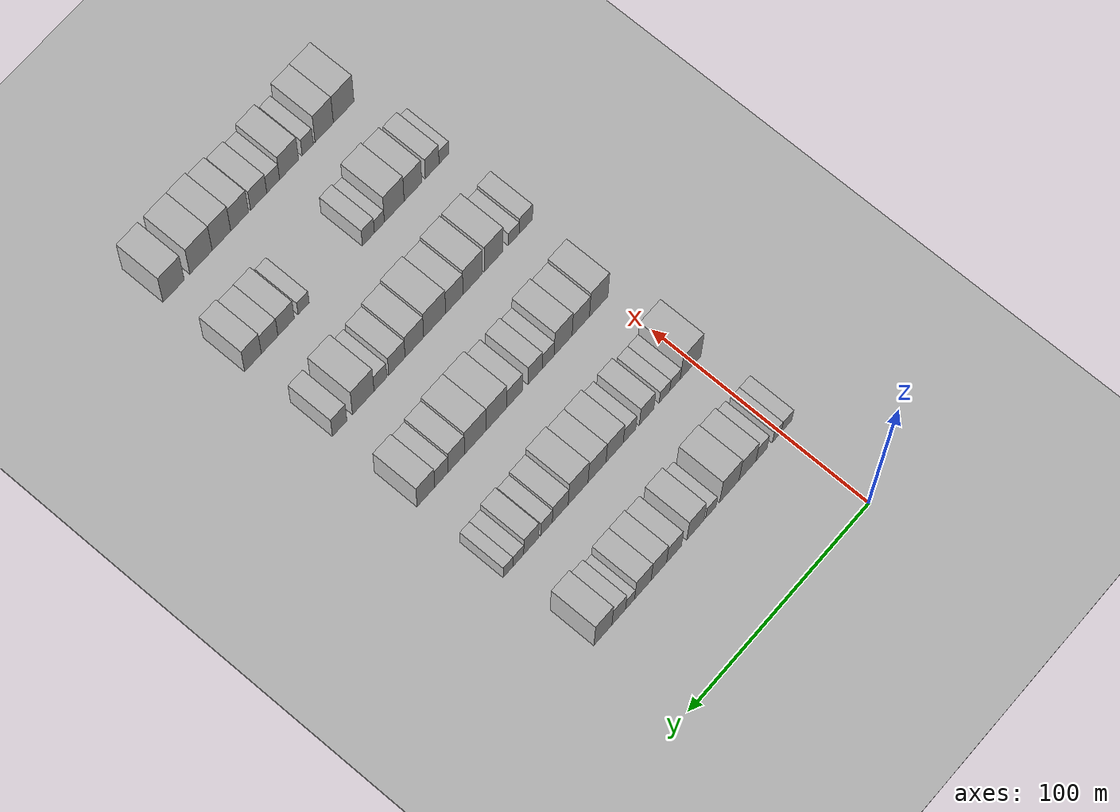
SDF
<sdf version="1.6">
 <world name="default">
  <include><name>ground_plane_1</name><uri>model://HANNAS_ground_plane</uri></include>
  <include>
   <name>ground_plane_2</name>
   <uri>model://HANNAS_ground_plane</uri>
   <pose>100 0 0  0 0 0</pose>
  </include>
  <model name="building_67">
   <static>1</static>
   <pose>50.0000 -2.9251 0 0.000000 0.000000 0.000000</pose>
   <link name="link">
    <pose>0 0 6.00 0 0 0</pose>
    <collision name="collision"><geometry><box><size>20.0000 5.9424 12.0000</size></box></geometry></collision>
    <visual name="visual">
     <cast_shadows>0</cast_shadows>
     <geometry><box><size>20.0000 5.9424 12.0000</size></box></geometry>
     <material>
      <script>
       <uri>model://HANNAS_wall/materials/scripts</uri>
       <uri>model://HANNAS_wall/materials/textures</uri>
       <name>vrc/HANNAS_wall</name>
      </script>
     </material>
    </visual>
   </link>
  </model>
  <model name="building_68">
   <static>1</static>
   <pose>50.0000 2.5611 0 0.000000 0.000000 0.000000</pose>
   <link name="link">
    <pose>0 0 6.00 0 0 0</pose>
    <collision name="collision"><geometry><box><size>20.0000 5.0298 12.0000</size></box></geometry></collision>
    <visual name="visual">
     <cast_shadows>0</cast_shadows>
     <geometry><box><size>20.0000 5.0298 12.0000</size></box></geometry>
     <material>
      <script>
       <uri>model://HANNAS_wall/materials/scripts</uri>
       <uri>model://HANNAS_wall/materials/textures</uri>
       <name>vrc/HANNAS_wall</name>
      </script>
     </material>
    </visual>
   </link>
  </model>
  <model name="building_69">
   <static>1</static>
   <pose>50.0000 11.1921 0 0.000000 0.000000 0.000000</pose>
   <link name="link">
    <pose>0 0 7.50 0 0 0</pose>
    <collision name="collision"><geometry><box><size>20.0000 6.2323 15.0000</size></box></geometry></collision>
    <visual name="visual">
     <cast_shadows>0</cast_shadows>
     <geometry><box><size>20.0000 6.2323 15.0000</size></box></geometry>
     <material>
      <script>
       <uri>model://HANNAS_wall/materials/scripts</uri>
       <uri>model://HANNAS_wall/materials/textures</uri>
       <name>vrc/HANNAS_wall</name>
      </script>
     </material>
    </visual>
   </link>
  </model>
  <model name="building_70">
   <static>1</static>
   <pose>50.0000 19.0318 0 0.000000 0.000000 0.000000</pose>
   <link name="link">
    <pose>0 0 10.50 0 0 0</pose>
    <collision name="collision"><geometry><box><size>20.0000 9.4470 21.0000</size></box></geometry></collision>
    <visual name="visual">
     <cast_shadows>0</cast_shadows>
     <geometry><box><size>20.0000 9.4470 21.0000</size></box></geometry>
     <material>
      <script>
       <uri>model://HANNAS_wall/materials/scripts</uri>
       <uri>model://HANNAS_wall/materials/textures</uri>
       <name>vrc/HANNAS_wall</name>
      </script>
     </material>
    </visual>
   </link>
  </model>
  <model name="building_71">
   <static>1</static>
   <pose>50.0000 29.1392 0 0.000000 0.000000 0.000000</pose>
   <link name="link">
    <pose>0 0 12.00 0 0 0</pose>
    <collision name="collision"><geometry><box><size>20.0000 10.7678 24.0000</size></box></geometry></collision>
    <visual name="visual">
     <cast_shadows>0</cast_shadows>
     <geometry><box><size>20.0000 10.7678 24.0000</size></box></geometry>
     <material>
      <script>
       <uri>model://HANNAS_wall/materials/scripts</uri>
       <uri>model://HANNAS_wall/materials/textures</uri>
       <name>vrc/HANNAS_wall</name>
      </script>
     </material>
    </visual>
   </link>
  </model>
  <model name="building_72">
   <static>1</static>
   <pose>50.0000 39.4350 0 0.000000 0.000000 0.000000</pose>
   <link name="link">
    <pose>0 0 6.00 0 0 0</pose>
    <collision name="collision"><geometry><box><size>20.0000 5.8238 12.0000</size></box></geometry></collision>
    <visual name="visual">
     <cast_shadows>0</cast_shadows>
     <geometry><box><size>20.0000 5.8238 12.0000</size></box></geometry>
     <material>
      <script>
       <uri>model://HANNAS_wall/materials/scripts</uri>
       <uri>model://HANNAS_wall/materials/textures</uri>
       <name>vrc/HANNAS_wall</name>
      </script>
     </material>
    </visual>
   </link>
  </model>
  <model name="building_73">
   <static>1</static>
   <pose>50.0000 48.0004 0 0.000000 0.000000 0.000000</pose>
   <link name="link">
    <pose>0 0 10.50 0 0 0</pose>
    <collision name="collision"><geometry><box><size>20.0000 9.3071 21.0000</size></box></geometry></collision>
    <visual name="visual">
     <cast_shadows>0</cast_shadows>
     <geometry><box><size>20.0000 9.3071 21.0000</size></box></geometry>
     <material>
      <script>
       <uri>model://HANNAS_wall/materials/scripts</uri>
       <uri>model://HANNAS_wall/materials/textures</uri>
       <name>vrc/HANNAS_wall</name>
      </script>
     </material>
    </visual>
   </link>
  </model>
  <model name="building_74">
   <static>1</static>
   <pose>50.0000 59.7397 0 0.000000 0.000000 0.000000</pose>
   <link name="link">
    <pose>0 0 9.00 0 0 0</pose>
    <collision name="collision"><geometry><box><size>20.0000 8.1716 18.0000</size></box></geometry></collision>
    <visual name="visual">
     <cast_shadows>0</cast_shadows>
     <geometry><box><size>20.0000 8.1716 18.0000</size></box></geometry>
     <material>
      <script>
       <uri>model://HANNAS_wall/materials/scripts</uri>
       <uri>model://HANNAS_wall/materials/textures</uri>
       <name>vrc/HANNAS_wall</name>
      </script>
     </material>
    </visual>
   </link>
  </model>
  <model name="building_75">
   <static>1</static>
   <pose>50.0000 68.0638 0 0.000000 0.000000 0.000000</pose>
   <link name="link">
    <pose>0 0 10.50 0 0 0</pose>
    <collision name="collision"><geometry><box><size>20.0000 8.4766 21.0000</size></box></geometry></collision>
    <visual name="visual">
     <cast_shadows>0</cast_shadows>
     <geometry><box><size>20.0000 8.4766 21.0000</size></box></geometry>
     <material>
      <script>
       <uri>model://HANNAS_wall/materials/scripts</uri>
       <uri>model://HANNAS_wall/materials/textures</uri>
       <name>vrc/HANNAS_wall</name>
      </script>
     </material>
    </visual>
   </link>
  </model>
  <model name="building_76">
   <static>1</static>
   <pose>50.0000 76.7756 0 0.000000 0.000000 0.000000</pose>
   <link name="link">
    <pose>0 0 10.50 0 0 0</pose>
    <collision name="collision"><geometry><box><size>20.0000 8.9470 21.0000</size></box></geometry></collision>
    <visual name="visual">
     <cast_shadows>0</cast_shadows>
     <geometry><box><size>20.0000 8.9470 21.0000</size></box></geometry>
     <material>
      <script>
       <uri>model://HANNAS_wall/materials/scripts</uri>
       <uri>model://HANNAS_wall/materials/textures</uri>
       <name>vrc/HANNAS_wall</name>
      </script>
     </material>
    </visual>
   </link>
  </model>
  <model name="building_77">
   <static>1</static>
   <pose>50.0000 83.7111 0 0.000000 0.000000 0.000000</pose>
   <link name="link">
    <pose>0 0 6.00 0 0 0</pose>
    <collision name="collision"><geometry><box><size>20.0000 4.9240 12.0000</size></box></geometry></collision>
    <visual name="visual">
     <cast_shadows>0</cast_shadows>
     <geometry><box><size>20.0000 4.9240 12.0000</size></box></geometry>
     <material>
      <script>
       <uri>model://HANNAS_wall/materials/scripts</uri>
       <uri>model://HANNAS_wall/materials/textures</uri>
       <name>vrc/HANNAS_wall</name>
      </script>
     </material>
    </visual>
   </link>
  </model>
  <model name="building_78">
   <static>1</static>
   <pose>50.0000 89.8989 0 0.000000 0.000000 0.000000</pose>
   <link name="link">
    <pose>0 0 9.00 0 0 0</pose>
    <collision name="collision"><geometry><box><size>20.0000 7.4517 18.0000</size></box></geometry></collision>
    <visual name="visual">
     <cast_shadows>0</cast_shadows>
     <geometry><box><size>20.0000 7.4517 18.0000</size></box></geometry>
     <material>
      <script>
       <uri>model://HANNAS_wall/materials/scripts</uri>
       <uri>model://HANNAS_wall/materials/textures</uri>
       <name>vrc/HANNAS_wall</name>
      </script>
     </material>
    </visual>
   </link>
  </model>
  <model name="building_79">
   <static>1</static>
   <pose>50.0000 98.4519 0 0.000000 0.000000 0.000000</pose>
   <link name="link">
    <pose>0 0 12.00 0 0 0</pose>
    <collision name="collision"><geometry><box><size>20.0000 9.6544 24.0000</size></box></geometry></collision>
    <visual name="visual">
     <cast_shadows>0</cast_shadows>
     <geometry><box><size>20.0000 9.6544 24.0000</size></box></geometry>
     <material>
      <script>
       <uri>model://HANNAS_wall/materials/scripts</uri>
       <uri>model://HANNAS_wall/materials/textures</uri>
       <name>vrc/HANNAS_wall</name>
      </script>
     </material>
    </visual>
   </link>
  </model>
  <model name="building_208">
   <static>1</static>
   <pose>90.0000 2.2526 0 0.000000 0.000000 0.000000</pose>
   <link name="link">
    <pose>0 0 12.00 0 0 0</pose>
    <collision name="collision"><geometry><box><size>20.0000 11.5766 24.0000</size></box></geometry></collision>
    <visual name="visual">
     <cast_shadows>0</cast_shadows>
     <geometry><box><size>20.0000 11.5766 24.0000</size></box></geometry>
     <material>
      <script>
       <uri>model://HANNAS_wall/materials/scripts</uri>
       <uri>model://HANNAS_wall/materials/textures</uri>
       <name>vrc/HANNAS_wall</name>
      </script>
     </material>
    </visual>
   </link>
  </model>
  <model name="building_209">
   <static>1</static>
   <pose>90.0000 10.9631 0 0.000000 0.000000 0.000000</pose>
   <link name="link">
    <pose>0 0 6.00 0 0 0</pose>
    <collision name="collision"><geometry><box><size>20.0000 5.8444 12.0000</size></box></geometry></collision>
    <visual name="visual">
     <cast_shadows>0</cast_shadows>
     <geometry><box><size>20.0000 5.8444 12.0000</size></box></geometry>
     <material>
      <script>
       <uri>model://HANNAS_wall/materials/scripts</uri>
       <uri>model://HANNAS_wall/materials/textures</uri>
       <name>vrc/HANNAS_wall</name>
      </script>
     </material>
    </visual>
   </link>
  </model>
  <model name="building_210">
   <static>1</static>
   <pose>90.0000 16.8318 0 0.000000 0.000000 0.000000</pose>
   <link name="link">
    <pose>0 0 6.00 0 0 0</pose>
    <collision name="collision"><geometry><box><size>20.0000 5.8929 12.0000</size></box></geometry></collision>
    <visual name="visual">
     <cast_shadows>0</cast_shadows>
     <geometry><box><size>20.0000 5.8929 12.0000</size></box></geometry>
     <material>
      <script>
       <uri>model://HANNAS_wall/materials/scripts</uri>
       <uri>model://HANNAS_wall/materials/textures</uri>
       <name>vrc/HANNAS_wall</name>
      </script>
     </material>
    </visual>
   </link>
  </model>
  <model name="building_211">
   <static>1</static>
   <pose>90.0000 26.8018 0 0.000000 0.000000 0.000000</pose>
   <link name="link">
    <pose>0 0 9.00 0 0 0</pose>
    <collision name="collision"><geometry><box><size>20.0000 8.0470 18.0000</size></box></geometry></collision>
    <visual name="visual">
     <cast_shadows>0</cast_shadows>
     <geometry><box><size>20.0000 8.0470 18.0000</size></box></geometry>
     <material>
      <script>
       <uri>model://HANNAS_wall/materials/scripts</uri>
       <uri>model://HANNAS_wall/materials/textures</uri>
       <name>vrc/HANNAS_wall</name>
      </script>
     </material>
    </visual>
   </link>
  </model>
  <model name="building_212">
   <static>1</static>
   <pose>90.0000 36.2818 0 0.000000 0.000000 0.000000</pose>
   <link name="link">
    <pose>0 0 7.50 0 0 0</pose>
    <collision name="collision"><geometry><box><size>20.0000 6.9131 15.0000</size></box></geometry></collision>
    <visual name="visual">
     <cast_shadows>0</cast_shadows>
     <geometry><box><size>20.0000 6.9131 15.0000</size></box></geometry>
     <material>
      <script>
       <uri>model://HANNAS_wall/materials/scripts</uri>
       <uri>model://HANNAS_wall/materials/textures</uri>
       <name>vrc/HANNAS_wall</name>
      </script>
     </material>
    </visual>
   </link>
  </model>
  <model name="building_213">
   <static>1</static>
   <pose>90.0000 44.4817 0 0.000000 0.000000 0.000000</pose>
   <link name="link">
    <pose>0 0 10.50 0 0 0</pose>
    <collision name="collision"><geometry><box><size>20.0000 9.4865 21.0000</size></box></geometry></collision>
    <visual name="visual">
     <cast_shadows>0</cast_shadows>
     <geometry><box><size>20.0000 9.4865 21.0000</size></box></geometry>
     <material>
      <script>
       <uri>model://HANNAS_wall/materials/scripts</uri>
       <uri>model://HANNAS_wall/materials/textures</uri>
       <name>vrc/HANNAS_wall</name>
      </script>
     </material>
    </visual>
   </link>
  </model>
  <model name="building_214">
   <static>1</static>
   <pose>90.0000 54.1620 0 0.000000 0.000000 0.000000</pose>
   <link name="link">
    <pose>0 0 10.50 0 0 0</pose>
    <collision name="collision"><geometry><box><size>20.0000 9.8741 21.0000</size></box></geometry></collision>
    <visual name="visual">
     <cast_shadows>0</cast_shadows>
     <geometry><box><size>20.0000 9.8741 21.0000</size></box></geometry>
     <material>
      <script>
       <uri>model://HANNAS_wall/materials/scripts</uri>
       <uri>model://HANNAS_wall/materials/textures</uri>
       <name>vrc/HANNAS_wall</name>
      </script>
     </material>
    </visual>
   </link>
  </model>
  <model name="building_215">
   <static>1</static>
   <pose>90.0000 64.5155 0 0.000000 0.000000 0.000000</pose>
   <link name="link">
    <pose>0 0 12.00 0 0 0</pose>
    <collision name="collision"><geometry><box><size>20.0000 10.8328 24.0000</size></box></geometry></collision>
    <visual name="visual">
     <cast_shadows>0</cast_shadows>
     <geometry><box><size>20.0000 10.8328 24.0000</size></box></geometry>
     <material>
      <script>
       <uri>model://HANNAS_wall/materials/scripts</uri>
       <uri>model://HANNAS_wall/materials/textures</uri>
       <name>vrc/HANNAS_wall</name>
      </script>
     </material>
    </visual>
   </link>
  </model>
  <model name="building_216">
   <static>1</static>
   <pose>90.0000 74.2738 0 0.000000 0.000000 0.000000</pose>
   <link name="link">
    <pose>0 0 9.00 0 0 0</pose>
    <collision name="collision"><geometry><box><size>20.0000 8.6839 18.0000</size></box></geometry></collision>
    <visual name="visual">
     <cast_shadows>0</cast_shadows>
     <geometry><box><size>20.0000 8.6839 18.0000</size></box></geometry>
     <material>
      <script>
       <uri>model://HANNAS_wall/materials/scripts</uri>
       <uri>model://HANNAS_wall/materials/textures</uri>
       <name>vrc/HANNAS_wall</name>
      </script>
     </material>
    </visual>
   </link>
  </model>
  <model name="building_217">
   <static>1</static>
   <pose>90.0000 81.8164 0 0.000000 0.000000 0.000000</pose>
   <link name="link">
    <pose>0 0 7.50 0 0 0</pose>
    <collision name="collision"><geometry><box><size>20.0000 6.4012 15.0000</size></box></geometry></collision>
    <visual name="visual">
     <cast_shadows>0</cast_shadows>
     <geometry><box><size>20.0000 6.4012 15.0000</size></box></geometry>
     <material>
      <script>
       <uri>model://HANNAS_wall/materials/scripts</uri>
       <uri>model://HANNAS_wall/materials/textures</uri>
       <name>vrc/HANNAS_wall</name>
      </script>
     </material>
    </visual>
   </link>
  </model>
  <model name="building_218">
   <static>1</static>
   <pose>90.0000 90.0729 0 0.000000 0.000000 0.000000</pose>
   <link name="link">
    <pose>0 0 9.00 0 0 0</pose>
    <collision name="collision"><geometry><box><size>20.0000 8.1118 18.0000</size></box></geometry></collision>
    <visual name="visual">
     <cast_shadows>0</cast_shadows>
     <geometry><box><size>20.0000 8.1118 18.0000</size></box></geometry>
     <material>
      <script>
       <uri>model://HANNAS_wall/materials/scripts</uri>
       <uri>model://HANNAS_wall/materials/textures</uri>
       <name>vrc/HANNAS_wall</name>
      </script>
     </material>
    </visual>
   </link>
  </model>
  <model name="building_219">
   <static>1</static>
   <pose>90.0000 97.0209 0 0.000000 0.000000 0.000000</pose>
   <link name="link">
    <pose>0 0 6.00 0 0 0</pose>
    <collision name="collision"><geometry><box><size>20.0000 5.7843 12.0000</size></box></geometry></collision>
    <visual name="visual">
     <cast_shadows>0</cast_shadows>
     <geometry><box><size>20.0000 5.7843 12.0000</size></box></geometry>
     <material>
      <script>
       <uri>model://HANNAS_wall/materials/scripts</uri>
       <uri>model://HANNAS_wall/materials/textures</uri>
       <name>vrc/HANNAS_wall</name>
      </script>
     </material>
    </visual>
   </link>
  </model>
  <model name="building_220">
   <static>1</static>
   <pose>90.0000 102.5352 0 0.000000 0.000000 0.000000</pose>
   <link name="link">
    <pose>0 0 6.00 0 0 0</pose>
    <collision name="collision"><geometry><box><size>20.0000 5.2442 12.0000</size></box></geometry></collision>
    <visual name="visual">
     <cast_shadows>0</cast_shadows>
     <geometry><box><size>20.0000 5.2442 12.0000</size></box></geometry>
     <material>
      <script>
       <uri>model://HANNAS_wall/materials/scripts</uri>
       <uri>model://HANNAS_wall/materials/textures</uri>
       <name>vrc/HANNAS_wall</name>
      </script>
     </material>
    </visual>
   </link>
  </model>
  <model name="building_346">
   <static>1</static>
   <pose>130.0000 5.7412 0 0.000000 0.000000 0.000000</pose>
   <link name="link">
    <pose>0 0 12.00 0 0 0</pose>
    <collision name="collision"><geometry><box><size>20.0000 10.3087 24.0000</size></box></geometry></collision>
    <visual name="visual">
     <cast_shadows>0</cast_shadows>
     <geometry><box><size>20.0000 10.3087 24.0000</size></box></geometry>
     <material>
      <script>
       <uri>model://HANNAS_wall/materials/scripts</uri>
       <uri>model://HANNAS_wall/materials/textures</uri>
       <name>vrc/HANNAS_wall</name>
      </script>
     </material>
    </visual>
   </link>
  </model>
  <model name="building_347">
   <static>1</static>
   <pose>130.0000 15.7295 0 0.000000 0.000000 0.000000</pose>
   <link name="link">
    <pose>0 0 10.50 0 0 0</pose>
    <collision name="collision"><geometry><box><size>20.0000 9.6678 21.0000</size></box></geometry></collision>
    <visual name="visual">
     <cast_shadows>0</cast_shadows>
     <geometry><box><size>20.0000 9.6678 21.0000</size></box></geometry>
     <material>
      <script>
       <uri>model://HANNAS_wall/materials/scripts</uri>
       <uri>model://HANNAS_wall/materials/textures</uri>
       <name>vrc/HANNAS_wall</name>
      </script>
     </material>
    </visual>
   </link>
  </model>
  <model name="building_348">
   <static>1</static>
   <pose>130.0000 25.5484 0 0.000000 0.000000 0.000000</pose>
   <link name="link">
    <pose>0 0 12.00 0 0 0</pose>
    <collision name="collision"><geometry><box><size>20.0000 9.9700 24.0000</size></box></geometry></collision>
    <visual name="visual">
     <cast_shadows>0</cast_shadows>
     <geometry><box><size>20.0000 9.9700 24.0000</size></box></geometry>
     <material>
      <script>
       <uri>model://HANNAS_wall/materials/scripts</uri>
       <uri>model://HANNAS_wall/materials/textures</uri>
       <name>vrc/HANNAS_wall</name>
      </script>
     </material>
    </visual>
   </link>
  </model>
  <model name="building_349">
   <static>1</static>
   <pose>130.0000 33.8254 0 0.000000 0.000000 0.000000</pose>
   <link name="link">
    <pose>0 0 7.50 0 0 0</pose>
    <collision name="collision"><geometry><box><size>20.0000 6.5841 15.0000</size></box></geometry></collision>
    <visual name="visual">
     <cast_shadows>0</cast_shadows>
     <geometry><box><size>20.0000 6.5841 15.0000</size></box></geometry>
     <material>
      <script>
       <uri>model://HANNAS_wall/materials/scripts</uri>
       <uri>model://HANNAS_wall/materials/textures</uri>
       <name>vrc/HANNAS_wall</name>
      </script>
     </material>
    </visual>
   </link>
  </model>
  <model name="building_350">
   <static>1</static>
   <pose>130.0000 40.9963 0 0.000000 0.000000 0.000000</pose>
   <link name="link">
    <pose>0 0 9.00 0 0 0</pose>
    <collision name="collision"><geometry><box><size>20.0000 7.7577 18.0000</size></box></geometry></collision>
    <visual name="visual">
     <cast_shadows>0</cast_shadows>
     <geometry><box><size>20.0000 7.7577 18.0000</size></box></geometry>
     <material>
      <script>
       <uri>model://HANNAS_wall/materials/scripts</uri>
       <uri>model://HANNAS_wall/materials/textures</uri>
       <name>vrc/HANNAS_wall</name>
      </script>
     </material>
    </visual>
   </link>
  </model>
  <model name="building_351">
   <static>1</static>
   <pose>130.0000 52.2094 0 0.000000 0.000000 0.000000</pose>
   <link name="link">
    <pose>0 0 9.00 0 0 0</pose>
    <collision name="collision"><geometry><box><size>20.0000 8.6685 18.0000</size></box></geometry></collision>
    <visual name="visual">
     <cast_shadows>0</cast_shadows>
     <geometry><box><size>20.0000 8.6685 18.0000</size></box></geometry>
     <material>
      <script>
       <uri>model://HANNAS_wall/materials/scripts</uri>
       <uri>model://HANNAS_wall/materials/textures</uri>
       <name>vrc/HANNAS_wall</name>
      </script>
     </material>
    </visual>
   </link>
  </model>
  <model name="building_352">
   <static>1</static>
   <pose>130.0000 62.1734 0 0.000000 0.000000 0.000000</pose>
   <link name="link">
    <pose>0 0 12.00 0 0 0</pose>
    <collision name="collision"><geometry><box><size>20.0000 11.2594 24.0000</size></box></geometry></collision>
    <visual name="visual">
     <cast_shadows>0</cast_shadows>
     <geometry><box><size>20.0000 11.2594 24.0000</size></box></geometry>
     <material>
      <script>
       <uri>model://HANNAS_wall/materials/scripts</uri>
       <uri>model://HANNAS_wall/materials/textures</uri>
       <name>vrc/HANNAS_wall</name>
      </script>
     </material>
    </visual>
   </link>
  </model>
  <model name="building_353">
   <static>1</static>
   <pose>130.0000 73.6812 0 0.000000 0.000000 0.000000</pose>
   <link name="link">
    <pose>0 0 12.00 0 0 0</pose>
    <collision name="collision"><geometry><box><size>20.0000 11.7561 24.0000</size></box></geometry></collision>
    <visual name="visual">
     <cast_shadows>0</cast_shadows>
     <geometry><box><size>20.0000 11.7561 24.0000</size></box></geometry>
     <material>
      <script>
       <uri>model://HANNAS_wall/materials/scripts</uri>
       <uri>model://HANNAS_wall/materials/textures</uri>
       <name>vrc/HANNAS_wall</name>
      </script>
     </material>
    </visual>
   </link>
  </model>
  <model name="building_354">
   <static>1</static>
   <pose>130.0000 84.0044 0 0.000000 0.000000 0.000000</pose>
   <link name="link">
    <pose>0 0 10.50 0 0 0</pose>
    <collision name="collision"><geometry><box><size>20.0000 8.8904 21.0000</size></box></geometry></collision>
    <visual name="visual">
     <cast_shadows>0</cast_shadows>
     <geometry><box><size>20.0000 8.8904 21.0000</size></box></geometry>
     <material>
      <script>
       <uri>model://HANNAS_wall/materials/scripts</uri>
       <uri>model://HANNAS_wall/materials/textures</uri>
       <name>vrc/HANNAS_wall</name>
      </script>
     </material>
    </visual>
   </link>
  </model>
  <model name="building_355">
   <static>1</static>
   <pose>130.0000 92.0785 0 0.000000 0.000000 0.000000</pose>
   <link name="link">
    <pose>0 0 9.00 0 0 0</pose>
    <collision name="collision"><geometry><box><size>20.0000 7.2577 18.0000</size></box></geometry></collision>
    <visual name="visual">
     <cast_shadows>0</cast_shadows>
     <geometry><box><size>20.0000 7.2577 18.0000</size></box></geometry>
     <material>
      <script>
       <uri>model://HANNAS_wall/materials/scripts</uri>
       <uri>model://HANNAS_wall/materials/textures</uri>
       <name>vrc/HANNAS_wall</name>
      </script>
     </material>
    </visual>
   </link>
  </model>
  <model name="building_356">
   <static>1</static>
   <pose>130.0000 100.4611 0 0.000000 0.000000 0.000000</pose>
   <link name="link">
    <pose>0 0 10.50 0 0 0</pose>
    <collision name="collision"><geometry><box><size>20.0000 9.5075 21.0000</size></box></geometry></collision>
    <visual name="visual">
     <cast_shadows>0</cast_shadows>
     <geometry><box><size>20.0000 9.5075 21.0000</size></box></geometry>
     <material>
      <script>
       <uri>model://HANNAS_wall/materials/scripts</uri>
       <uri>model://HANNAS_wall/materials/textures</uri>
       <name>vrc/HANNAS_wall</name>
      </script>
     </material>
    </visual>
   </link>
  </model>
  <model name="building_485">
   <static>1</static>
   <pose>170.0000 -0.7146 0 0.000000 0.000000 0.000000</pose>
   <link name="link">
    <pose>0 0 7.50 0 0 0</pose>
    <collision name="collision"><geometry><box><size>20.0000 7.4684 15.0000</size></box></geometry></collision>
    <visual name="visual">
     <cast_shadows>0</cast_shadows>
     <geometry><box><size>20.0000 7.4684 15.0000</size></box></geometry>
     <material>
      <script>
       <uri>model://HANNAS_wall/materials/scripts</uri>
       <uri>model://HANNAS_wall/materials/textures</uri>
       <name>vrc/HANNAS_wall</name>
      </script>
     </material>
    </visual>
   </link>
  </model>
  <model name="building_486">
   <static>1</static>
   <pose>170.0000 5.9937 0 0.000000 0.000000 0.000000</pose>
   <link name="link">
    <pose>0 0 6.00 0 0 0</pose>
    <collision name="collision"><geometry><box><size>20.0000 5.9483 12.0000</size></box></geometry></collision>
    <visual name="visual">
     <cast_shadows>0</cast_shadows>
     <geometry><box><size>20.0000 5.9483 12.0000</size></box></geometry>
     <material>
      <script>
       <uri>model://HANNAS_wall/materials/scripts</uri>
       <uri>model://HANNAS_wall/materials/textures</uri>
       <name>vrc/HANNAS_wall</name>
      </script>
     </material>
    </visual>
   </link>
  </model>
  <model name="building_487">
   <static>1</static>
   <pose>170.0000 17.1739 0 0.000000 0.000000 0.000000</pose>
   <link name="link">
    <pose>0 0 12.00 0 0 0</pose>
    <collision name="collision"><geometry><box><size>20.0000 10.4120 24.0000</size></box></geometry></collision>
    <visual name="visual">
     <cast_shadows>0</cast_shadows>
     <geometry><box><size>20.0000 10.4120 24.0000</size></box></geometry>
     <material>
      <script>
       <uri>model://HANNAS_wall/materials/scripts</uri>
       <uri>model://HANNAS_wall/materials/textures</uri>
       <name>vrc/HANNAS_wall</name>
      </script>
     </material>
    </visual>
   </link>
  </model>
  <model name="building_488">
   <static>1</static>
   <pose>170.0000 28.7469 0 0.000000 0.000000 0.000000</pose>
   <link name="link">
    <pose>0 0 12.00 0 0 0</pose>
    <collision name="collision"><geometry><box><size>20.0000 10.7340 24.0000</size></box></geometry></collision>
    <visual name="visual">
     <cast_shadows>0</cast_shadows>
     <geometry><box><size>20.0000 10.7340 24.0000</size></box></geometry>
     <material>
      <script>
       <uri>model://HANNAS_wall/materials/scripts</uri>
       <uri>model://HANNAS_wall/materials/textures</uri>
       <name>vrc/HANNAS_wall</name>
      </script>
     </material>
    </visual>
   </link>
  </model>
  <model name="building_489">
   <static>1</static>
   <pose>170.0000 38.8839 0 0.000000 0.000000 0.000000</pose>
   <link name="link">
    <pose>0 0 10.50 0 0 0</pose>
    <collision name="collision"><geometry><box><size>20.0000 9.5401 21.0000</size></box></geometry></collision>
    <visual name="visual">
     <cast_shadows>0</cast_shadows>
     <geometry><box><size>20.0000 9.5401 21.0000</size></box></geometry>
     <material>
      <script>
       <uri>model://HANNAS_wall/materials/scripts</uri>
       <uri>model://HANNAS_wall/materials/textures</uri>
       <name>vrc/HANNAS_wall</name>
      </script>
     </material>
    </visual>
   </link>
  </model>
  <model name="building_490">
   <static>1</static>
   <pose>170.0000 49.6444 0 0.000000 0.000000 0.000000</pose>
   <link name="link">
    <pose>0 0 12.00 0 0 0</pose>
    <collision name="collision"><geometry><box><size>20.0000 11.9809 24.0000</size></box></geometry></collision>
    <visual name="visual">
     <cast_shadows>0</cast_shadows>
     <geometry><box><size>20.0000 11.9809 24.0000</size></box></geometry>
     <material>
      <script>
       <uri>model://HANNAS_wall/materials/scripts</uri>
       <uri>model://HANNAS_wall/materials/textures</uri>
       <name>vrc/HANNAS_wall</name>
      </script>
     </material>
    </visual>
   </link>
  </model>
  <model name="building_491">
   <static>1</static>
   <pose>170.0000 60.7049 0 0.000000 0.000000 0.000000</pose>
   <link name="link">
    <pose>0 0 10.50 0 0 0</pose>
    <collision name="collision"><geometry><box><size>20.0000 10.1401 21.0000</size></box></geometry></collision>
    <visual name="visual">
     <cast_shadows>0</cast_shadows>
     <geometry><box><size>20.0000 10.1401 21.0000</size></box></geometry>
     <material>
      <script>
       <uri>model://HANNAS_wall/materials/scripts</uri>
       <uri>model://HANNAS_wall/materials/textures</uri>
       <name>vrc/HANNAS_wall</name>
      </script>
     </material>
    </visual>
   </link>
  </model>
  <model name="building_492">
   <static>1</static>
   <pose>170.0000 70.2241 0 0.000000 0.000000 0.000000</pose>
   <link name="link">
    <pose>0 0 9.00 0 0 0</pose>
    <collision name="collision"><geometry><box><size>20.0000 8.8984 18.0000</size></box></geometry></collision>
    <visual name="visual">
     <cast_shadows>0</cast_shadows>
     <geometry><box><size>20.0000 8.8984 18.0000</size></box></geometry>
     <material>
      <script>
       <uri>model://HANNAS_wall/materials/scripts</uri>
       <uri>model://HANNAS_wall/materials/textures</uri>
       <name>vrc/HANNAS_wall</name>
      </script>
     </material>
    </visual>
   </link>
  </model>
  <model name="building_493">
   <static>1</static>
   <pose>170.0000 79.1418 0 0.000000 0.000000 0.000000</pose>
   <link name="link">
    <pose>0 0 7.50 0 0 0</pose>
    <collision name="collision"><geometry><box><size>20.0000 6.9371 15.0000</size></box></geometry></collision>
    <visual name="visual">
     <cast_shadows>0</cast_shadows>
     <geometry><box><size>20.0000 6.9371 15.0000</size></box></geometry>
     <material>
      <script>
       <uri>model://HANNAS_wall/materials/scripts</uri>
       <uri>model://HANNAS_wall/materials/textures</uri>
       <name>vrc/HANNAS_wall</name>
      </script>
     </material>
    </visual>
   </link>
  </model>
  <model name="building_494">
   <static>1</static>
   <pose>170.0000 88.4236 0 0.000000 0.000000 0.000000</pose>
   <link name="link">
    <pose>0 0 12.00 0 0 0</pose>
    <collision name="collision"><geometry><box><size>20.0000 11.6265 24.0000</size></box></geometry></collision>
    <visual name="visual">
     <cast_shadows>0</cast_shadows>
     <geometry><box><size>20.0000 11.6265 24.0000</size></box></geometry>
     <material>
      <script>
       <uri>model://HANNAS_wall/materials/scripts</uri>
       <uri>model://HANNAS_wall/materials/textures</uri>
       <name>vrc/HANNAS_wall</name>
      </script>
     </material>
    </visual>
   </link>
  </model>
  <model name="building_495">
   <static>1</static>
   <pose>170.0000 101.1318 0 0.000000 0.000000 0.000000</pose>
   <link name="link">
    <pose>0 0 9.00 0 0 0</pose>
    <collision name="collision"><geometry><box><size>20.0000 7.7897 18.0000</size></box></geometry></collision>
    <visual name="visual">
     <cast_shadows>0</cast_shadows>
     <geometry><box><size>20.0000 7.7897 18.0000</size></box></geometry>
     <material>
      <script>
       <uri>model://HANNAS_wall/materials/scripts</uri>
       <uri>model://HANNAS_wall/materials/textures</uri>
       <name>vrc/HANNAS_wall</name>
      </script>
     </material>
    </visual>
   </link>
  </model>
  <model name="building_612">
   <static>1</static>
   <pose>210.0000 -1.5900 0 0.000000 0.000000 0.000000</pose>
   <link name="link">
    <pose>0 0 6.00 0 0 0</pose>
    <collision name="collision"><geometry><box><size>20.0000 5.4959 12.0000</size></box></geometry></collision>
    <visual name="visual">
     <cast_shadows>0</cast_shadows>
     <geometry><box><size>20.0000 5.4959 12.0000</size></box></geometry>
     <material>
      <script>
       <uri>model://HANNAS_wall/materials/scripts</uri>
       <uri>model://HANNAS_wall/materials/textures</uri>
       <name>vrc/HANNAS_wall</name>
      </script>
     </material>
    </visual>
   </link>
  </model>
  <model name="building_613">
   <static>1</static>
   <pose>210.0000 4.9634 0 0.000000 0.000000 0.000000</pose>
   <link name="link">
    <pose>0 0 9.00 0 0 0</pose>
    <collision name="collision"><geometry><box><size>20.0000 7.6109 18.0000</size></box></geometry></collision>
    <visual name="visual">
     <cast_shadows>0</cast_shadows>
     <geometry><box><size>20.0000 7.6109 18.0000</size></box></geometry>
     <material>
      <script>
       <uri>model://HANNAS_wall/materials/scripts</uri>
       <uri>model://HANNAS_wall/materials/textures</uri>
       <name>vrc/HANNAS_wall</name>
      </script>
     </material>
    </visual>
   </link>
  </model>
  <model name="building_614">
   <static>1</static>
   <pose>210.0000 15.6234 0 0.000000 0.000000 0.000000</pose>
   <link name="link">
    <pose>0 0 10.50 0 0 0</pose>
    <collision name="collision"><geometry><box><size>20.0000 9.7090 21.0000</size></box></geometry></collision>
    <visual name="visual">
     <cast_shadows>0</cast_shadows>
     <geometry><box><size>20.0000 9.7090 21.0000</size></box></geometry>
     <material>
      <script>
       <uri>model://HANNAS_wall/materials/scripts</uri>
       <uri>model://HANNAS_wall/materials/textures</uri>
       <name>vrc/HANNAS_wall</name>
      </script>
     </material>
    </visual>
   </link>
  </model>
  <model name="building_615">
   <static>1</static>
   <pose>210.0000 25.9254 0 0.000000 0.000000 0.000000</pose>
   <link name="link">
    <pose>0 0 12.00 0 0 0</pose>
    <collision name="collision"><geometry><box><size>20.0000 10.8949 24.0000</size></box></geometry></collision>
    <visual name="visual">
     <cast_shadows>0</cast_shadows>
     <geometry><box><size>20.0000 10.8949 24.0000</size></box></geometry>
     <material>
      <script>
       <uri>model://HANNAS_wall/materials/scripts</uri>
       <uri>model://HANNAS_wall/materials/textures</uri>
       <name>vrc/HANNAS_wall</name>
      </script>
     </material>
    </visual>
   </link>
  </model>
  <model name="building_616">
   <static>1</static>
   <pose>210.0000 34.1142 0 0.000000 0.000000 0.000000</pose>
   <link name="link">
    <pose>0 0 6.00 0 0 0</pose>
    <collision name="collision"><geometry><box><size>20.0000 5.4828 12.0000</size></box></geometry></collision>
    <visual name="visual">
     <cast_shadows>0</cast_shadows>
     <geometry><box><size>20.0000 5.4828 12.0000</size></box></geometry>
     <material>
      <script>
       <uri>model://HANNAS_wall/materials/scripts</uri>
       <uri>model://HANNAS_wall/materials/textures</uri>
       <name>vrc/HANNAS_wall</name>
      </script>
     </material>
    </visual>
   </link>
  </model>
  <model name="building_617">
   <static>1</static>
   <pose>210.0000 40.1663 0 0.000000 0.000000 0.000000</pose>
   <link name="link">
    <pose>0 0 7.50 0 0 0</pose>
    <collision name="collision"><geometry><box><size>20.0000 6.6214 15.0000</size></box></geometry></collision>
    <visual name="visual">
     <cast_shadows>0</cast_shadows>
     <geometry><box><size>20.0000 6.6214 15.0000</size></box></geometry>
     <material>
      <script>
       <uri>model://HANNAS_wall/materials/scripts</uri>
       <uri>model://HANNAS_wall/materials/textures</uri>
       <name>vrc/HANNAS_wall</name>
      </script>
     </material>
    </visual>
   </link>
  </model>
  <model name="building_618">
   <static>1</static>
   <pose>210.0000 75.4510 0 0.000000 0.000000 0.000000</pose>
   <link name="link">
    <pose>0 0 6.00 0 0 0</pose>
    <collision name="collision"><geometry><box><size>20.0000 5.9827 12.0000</size></box></geometry></collision>
    <visual name="visual">
     <cast_shadows>0</cast_shadows>
     <geometry><box><size>20.0000 5.9827 12.0000</size></box></geometry>
     <material>
      <script>
       <uri>model://HANNAS_wall/materials/scripts</uri>
       <uri>model://HANNAS_wall/materials/textures</uri>
       <name>vrc/HANNAS_wall</name>
      </script>
     </material>
    </visual>
   </link>
  </model>
  <model name="building_619">
   <static>1</static>
   <pose>210.0000 84.8587 0 0.000000 0.000000 0.000000</pose>
   <link name="link">
    <pose>0 0 9.00 0 0 0</pose>
    <collision name="collision"><geometry><box><size>20.0000 8.8329 18.0000</size></box></geometry></collision>
    <visual name="visual">
     <cast_shadows>0</cast_shadows>
     <geometry><box><size>20.0000 8.8329 18.0000</size></box></geometry>
     <material>
      <script>
       <uri>model://HANNAS_wall/materials/scripts</uri>
       <uri>model://HANNAS_wall/materials/textures</uri>
       <name>vrc/HANNAS_wall</name>
      </script>
     </material>
    </visual>
   </link>
  </model>
  <model name="building_620">
   <static>1</static>
   <pose>210.0000 93.7442 0 0.000000 0.000000 0.000000</pose>
   <link name="link">
    <pose>0 0 9.00 0 0 0</pose>
    <collision name="collision"><geometry><box><size>20.0000 8.9382 18.0000</size></box></geometry></collision>
    <visual name="visual">
     <cast_shadows>0</cast_shadows>
     <geometry><box><size>20.0000 8.9382 18.0000</size></box></geometry>
     <material>
      <script>
       <uri>model://HANNAS_wall/materials/scripts</uri>
       <uri>model://HANNAS_wall/materials/textures</uri>
       <name>vrc/HANNAS_wall</name>
      </script>
     </material>
    </visual>
   </link>
  </model>
  <model name="building_621">
   <static>1</static>
   <pose>210.0000 102.6963 0 0.000000 0.000000 0.000000</pose>
   <link name="link">
    <pose>0 0 10.50 0 0 0</pose>
    <collision name="collision"><geometry><box><size>20.0000 8.9660 21.0000</size></box></geometry></collision>
    <visual name="visual">
     <cast_shadows>0</cast_shadows>
     <geometry><box><size>20.0000 8.9660 21.0000</size></box></geometry>
     <material>
      <script>
       <uri>model://HANNAS_wall/materials/scripts</uri>
       <uri>model://HANNAS_wall/materials/textures</uri>
       <name>vrc/HANNAS_wall</name>
      </script>
     </material>
    </visual>
   </link>
  </model>
  <model name="building_753">
   <static>1</static>
   <pose>250.0000 8.3969 0 0.000000 0.000000 0.000000</pose>
   <link name="link">
    <pose>0 0 12.00 0 0 0</pose>
    <collision name="collision"><geometry><box><size>20.0000 11.3733 24.0000</size></box></geometry></collision>
    <visual name="visual">
     <cast_shadows>0</cast_shadows>
     <geometry><box><size>20.0000 11.3733 24.0000</size></box></geometry>
     <material>
      <script>
       <uri>model://HANNAS_wall/materials/scripts</uri>
       <uri>model://HANNAS_wall/materials/textures</uri>
       <name>vrc/HANNAS_wall</name>
      </script>
     </material>
    </visual>
   </link>
  </model>
  <model name="building_754">
   <static>1</static>
   <pose>250.0000 19.1379 0 0.000000 0.000000 0.000000</pose>
   <link name="link">
    <pose>0 0 12.00 0 0 0</pose>
    <collision name="collision"><geometry><box><size>20.0000 10.1086 24.0000</size></box></geometry></collision>
    <visual name="visual">
     <cast_shadows>0</cast_shadows>
     <geometry><box><size>20.0000 10.1086 24.0000</size></box></geometry>
     <material>
      <script>
       <uri>model://HANNAS_wall/materials/scripts</uri>
       <uri>model://HANNAS_wall/materials/textures</uri>
       <name>vrc/HANNAS_wall</name>
      </script>
     </material>
    </visual>
   </link>
  </model>
  <model name="building_755">
   <static>1</static>
   <pose>250.0000 28.2319 0 0.000000 0.000000 0.000000</pose>
   <link name="link">
    <pose>0 0 7.50 0 0 0</pose>
    <collision name="collision"><geometry><box><size>20.0000 6.0795 15.0000</size></box></geometry></collision>
    <visual name="visual">
     <cast_shadows>0</cast_shadows>
     <geometry><box><size>20.0000 6.0795 15.0000</size></box></geometry>
     <material>
      <script>
       <uri>model://HANNAS_wall/materials/scripts</uri>
       <uri>model://HANNAS_wall/materials/textures</uri>
       <name>vrc/HANNAS_wall</name>
      </script>
     </material>
    </visual>
   </link>
  </model>
  <model name="building_756">
   <static>1</static>
   <pose>250.0000 38.4353 0 0.000000 0.000000 0.000000</pose>
   <link name="link">
    <pose>0 0 10.50 0 0 0</pose>
    <collision name="collision"><geometry><box><size>20.0000 10.3274 21.0000</size></box></geometry></collision>
    <visual name="visual">
     <cast_shadows>0</cast_shadows>
     <geometry><box><size>20.0000 10.3274 21.0000</size></box></geometry>
     <material>
      <script>
       <uri>model://HANNAS_wall/materials/scripts</uri>
       <uri>model://HANNAS_wall/materials/textures</uri>
       <name>vrc/HANNAS_wall</name>
      </script>
     </material>
    </visual>
   </link>
  </model>
  <model name="building_757">
   <static>1</static>
   <pose>250.0000 47.1069 0 0.000000 0.000000 0.000000</pose>
   <link name="link">
    <pose>0 0 7.50 0 0 0</pose>
    <collision name="collision"><geometry><box><size>20.0000 7.0158 15.0000</size></box></geometry></collision>
    <visual name="visual">
     <cast_shadows>0</cast_shadows>
     <geometry><box><size>20.0000 7.0158 15.0000</size></box></geometry>
     <material>
      <script>
       <uri>model://HANNAS_wall/materials/scripts</uri>
       <uri>model://HANNAS_wall/materials/textures</uri>
       <name>vrc/HANNAS_wall</name>
      </script>
     </material>
    </visual>
   </link>
  </model>
  <model name="building_758">
   <static>1</static>
   <pose>250.0000 55.0631 0 0.000000 0.000000 0.000000</pose>
   <link name="link">
    <pose>0 0 9.00 0 0 0</pose>
    <collision name="collision"><geometry><box><size>20.0000 8.8966 18.0000</size></box></geometry></collision>
    <visual name="visual">
     <cast_shadows>0</cast_shadows>
     <geometry><box><size>20.0000 8.8966 18.0000</size></box></geometry>
     <material>
      <script>
       <uri>model://HANNAS_wall/materials/scripts</uri>
       <uri>model://HANNAS_wall/materials/textures</uri>
       <name>vrc/HANNAS_wall</name>
      </script>
     </material>
    </visual>
   </link>
  </model>
  <model name="building_759">
   <static>1</static>
   <pose>250.0000 65.3660 0 0.000000 0.000000 0.000000</pose>
   <link name="link">
    <pose>0 0 10.50 0 0 0</pose>
    <collision name="collision"><geometry><box><size>20.0000 9.7093 21.0000</size></box></geometry></collision>
    <visual name="visual">
     <cast_shadows>0</cast_shadows>
     <geometry><box><size>20.0000 9.7093 21.0000</size></box></geometry>
     <material>
      <script>
       <uri>model://HANNAS_wall/materials/scripts</uri>
       <uri>model://HANNAS_wall/materials/textures</uri>
       <name>vrc/HANNAS_wall</name>
      </script>
     </material>
    </visual>
   </link>
  </model>
  <model name="building_760">
   <static>1</static>
   <pose>250.0000 75.2357 0 0.000000 0.000000 0.000000</pose>
   <link name="link">
    <pose>0 0 12.00 0 0 0</pose>
    <collision name="collision"><geometry><box><size>20.0000 10.0300 24.0000</size></box></geometry></collision>
    <visual name="visual">
     <cast_shadows>0</cast_shadows>
     <geometry><box><size>20.0000 10.0300 24.0000</size></box></geometry>
     <material>
      <script>
       <uri>model://HANNAS_wall/materials/scripts</uri>
       <uri>model://HANNAS_wall/materials/textures</uri>
       <name>vrc/HANNAS_wall</name>
      </script>
     </material>
    </visual>
   </link>
  </model>
  <model name="building_761">
   <static>1</static>
   <pose>250.0000 86.2477 0 0.000000 0.000000 0.000000</pose>
   <link name="link">
    <pose>0 0 12.00 0 0 0</pose>
    <collision name="collision"><geometry><box><size>20.0000 11.9941 24.0000</size></box></geometry></collision>
    <visual name="visual">
     <cast_shadows>0</cast_shadows>
     <geometry><box><size>20.0000 11.9941 24.0000</size></box></geometry>
     <material>
      <script>
       <uri>model://HANNAS_wall/materials/scripts</uri>
       <uri>model://HANNAS_wall/materials/textures</uri>
       <name>vrc/HANNAS_wall</name>
      </script>
     </material>
    </visual>
   </link>
  </model>
  <model name="building_762">
   <static>1</static>
   <pose>250.0000 100.9161 0 0.000000 0.000000 0.000000</pose>
   <link name="link">
    <pose>0 0 12.00 0 0 0</pose>
    <collision name="collision"><geometry><box><size>20.0000 11.3426 24.0000</size></box></geometry></collision>
    <visual name="visual">
     <cast_shadows>0</cast_shadows>
     <geometry><box><size>20.0000 11.3426 24.0000</size></box></geometry>
     <material>
      <script>
       <uri>model://HANNAS_wall/materials/scripts</uri>
       <uri>model://HANNAS_wall/materials/textures</uri>
       <name>vrc/HANNAS_wall</name>
      </script>
     </material>
    </visual>
   </link>
  </model>
 </world>
</sdf>
